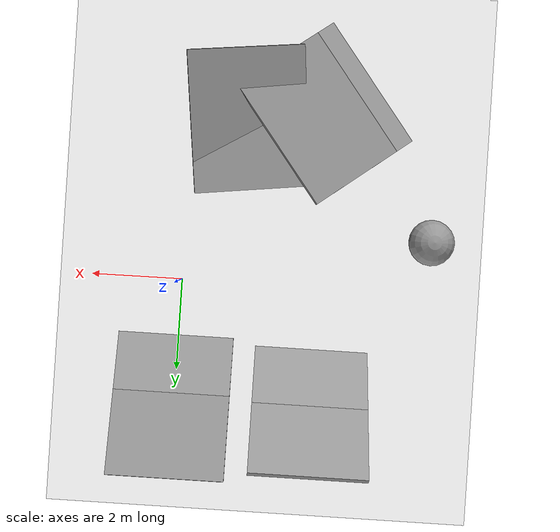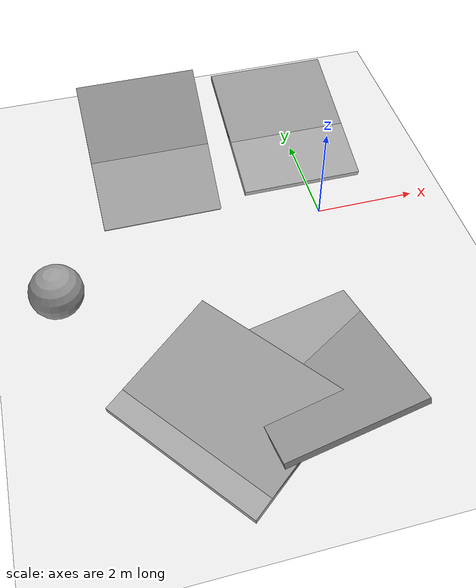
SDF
<sdf version="1.6">
 <world name="default">
  <light name="sun" type="directional">
   <pose>0 0 10 0 -0 0</pose>
   <diffuse>0.8 0.8 0.8 1</diffuse>
   <specular>0.2 0.2 0.2 1</specular>
   <attenuation>
    <range>1000</range>
    <constant>0.9</constant>
    <linear>0.01</linear>
    <quadratic>0.001</quadratic>
   </attenuation>
   <direction>-0.5 0.1 -0.9</direction>
  </light>
  <model name="ground_plane">
   <static>1</static>
   <link name="link">
    <collision name="collision">
     <geometry><plane><normal>0 0 1</normal><size>100 100</size></plane></geometry>
     <surface>
      <contact><collide_bitmask>65535</collide_bitmask></contact>
      <friction><ode><mu>100</mu><mu2>50</mu2></ode></friction>
     </surface>
    </collision>
    <visual name="visual">
     <cast_shadows>0</cast_shadows>
     <geometry><plane><normal>0 0 1</normal><size>100 100</size></plane></geometry>
     <material>
      <script><uri>file://media/materials/scripts/gazebo.material</uri><name>Gazebo/Grey</name></script>
     </material>
    </visual>
   </link>
  </model>
  <gravity>0 0 -9.8</gravity>
  <magnetic_field>6e-06 2.3e-05 -4.2e-05</magnetic_field>
  <atmosphere type="adiabatic"/>
  <physics name="default_physics" default="0" type="ode">
   <max_step_size>0.001</max_step_size>
   <real_time_factor>1</real_time_factor>
   <real_time_update_rate>1000</real_time_update_rate>
  </physics>
  <scene><ambient>0.4 0.4 0.4 1</ambient><background>0.7 0.7 0.7 1</background><shadows>1</shadows></scene>
  <audio><device>default</device></audio>
  <spherical_coordinates>
   <surface_model>EARTH_WGS84</surface_model>
   <latitude_deg>0</latitude_deg>
   <longitude_deg>0</longitude_deg>
   <elevation>0</elevation>
   <heading_deg>0</heading_deg>
  </spherical_coordinates>
  <model name="ramp_static">
   <link name="link">
    <inertial>
     <mass>1</mass>
     <inertia>
      <ixx>0.166667</ixx>
      <ixy>0</ixy>
      <ixz>0</ixz>
      <iyy>0.166667</iyy>
      <iyz>0</iyz>
      <izz>0.166667</izz>
     </inertia>
    </inertial>
    <visual name="visual">
     <geometry><box><size>2.59037 3.16832 0.131346</size></box></geometry>
     <material>
      <script><name>Gazebo/Grey</name><uri>file://media/materials/scripts/gazebo.material</uri></script>
     </material>
    </visual>
    <collision name="collision">
     <geometry><box><size>2.59037 3.16832 0.131346</size></box></geometry>
     <surface>
      <friction>
       <ode><mu>1</mu><mu2>1</mu2><fdir1>0 0 0</fdir1><slip1>0</slip1><slip2>0</slip2></ode>
       <torsional>
        <coefficient>1</coefficient>
        <patch_radius>0</patch_radius>
        <surface_radius>0</surface_radius>
        <use_patch_radius>1</use_patch_radius>
        <ode><slip>0</slip></ode>
       </torsional>
      </friction>
      <bounce><restitution_coefficient>0</restitution_coefficient><threshold>1e+06</threshold></bounce>
      <contact>
       <collide_without_contact>0</collide_without_contact>
       <collide_without_contact_bitmask>1</collide_without_contact_bitmask>
       <collide_bitmask>1</collide_bitmask>
       <ode>
        <soft_cfm>0</soft_cfm>
        <soft_erp>0.2</soft_erp>
        <kp>1e+13</kp>
        <kd>1</kd>
        <max_vel>0.01</max_vel>
        <min_depth>0</min_depth>
       </ode>
       <bullet>
        <split_impulse>1</split_impulse>
        <split_impulse_penetration_threshold>-0.01</split_impulse_penetration_threshold>
        <soft_cfm>0</soft_cfm>
        <soft_erp>0.2</soft_erp>
        <kp>1e+13</kp>
        <kd>1</kd>
       </bullet>
      </contact>
     </surface>
    </collision>
   </link>
   <static>1</static>
   <pose>0.087244 2.81278 0 0.278847 -0 0</pose>
  </model>
  <model name="ramp_static_0">
   <link name="link">
    <inertial>
     <mass>1</mass>
     <inertia>
      <ixx>0.166667</ixx>
      <ixy>0</ixy>
      <ixz>0</ixz>
      <iyy>0.166667</iyy>
      <iyz>0</iyz>
      <izz>0.166667</izz>
     </inertia>
    </inertial>
    <visual name="visual">
     <geometry><box><size>2.59037 3.16832 0.131346</size></box></geometry>
     <material>
      <script><name>Gazebo/Grey</name><uri>file://media/materials/scripts/gazebo.material</uri></script>
     </material>
    </visual>
    <collision name="collision">
     <geometry><box><size>2.59037 3.16832 0.131346</size></box></geometry>
     <surface>
      <friction>
       <ode><mu>1</mu><mu2>1</mu2><fdir1>0 0 0</fdir1><slip1>0</slip1><slip2>0</slip2></ode>
       <torsional>
        <coefficient>1</coefficient>
        <patch_radius>0</patch_radius>
        <surface_radius>0</surface_radius>
        <use_patch_radius>1</use_patch_radius>
        <ode><slip>0</slip></ode>
       </torsional>
      </friction>
      <bounce><restitution_coefficient>0</restitution_coefficient><threshold>1e+06</threshold></bounce>
      <contact>
       <collide_without_contact>0</collide_without_contact>
       <collide_without_contact_bitmask>1</collide_without_contact_bitmask>
       <collide_bitmask>1</collide_bitmask>
       <ode>
        <soft_cfm>0</soft_cfm>
        <soft_erp>0.2</soft_erp>
        <kp>1e+13</kp>
        <kd>1</kd>
        <max_vel>0.01</max_vel>
        <min_depth>0</min_depth>
       </ode>
       <bullet>
        <split_impulse>1</split_impulse>
        <split_impulse_penetration_threshold>-0.01</split_impulse_penetration_threshold>
        <soft_cfm>0</soft_cfm>
        <soft_erp>0.2</soft_erp>
        <kp>1e+13</kp>
        <kd>1</kd>
       </bullet>
      </contact>
     </surface>
    </collision>
   </link>
   <static>1</static>
   <pose>-3.00534 2.75436 0 0.661681 -0 0</pose>
  </model>
  <model name="ramp_static_1">
   <link name="link">
    <inertial>
     <mass>1</mass>
     <inertia>
      <ixx>0.166667</ixx>
      <ixy>0</ixy>
      <ixz>0</ixz>
      <iyy>0.166667</iyy>
      <iyz>0</iyz>
      <izz>0.166667</izz>
     </inertia>
    </inertial>
    <visual name="visual">
     <geometry><box><size>2.59037 3.16832 0.131346</size></box></geometry>
     <material>
      <script><name>Gazebo/Grey</name><uri>file://media/materials/scripts/gazebo.material</uri></script>
     </material>
    </visual>
    <collision name="collision">
     <geometry><box><size>2.59037 3.16832 0.131346</size></box></geometry>
     <surface>
      <friction>
       <ode><mu>1</mu><mu2>1</mu2><fdir1>0 0 0</fdir1><slip1>0</slip1><slip2>0</slip2></ode>
       <torsional>
        <coefficient>1</coefficient>
        <patch_radius>0</patch_radius>
        <surface_radius>0</surface_radius>
        <use_patch_radius>1</use_patch_radius>
        <ode><slip>0</slip></ode>
       </torsional>
      </friction>
      <bounce><restitution_coefficient>0</restitution_coefficient><threshold>1e+06</threshold></bounce>
      <contact>
       <collide_without_contact>0</collide_without_contact>
       <collide_without_contact_bitmask>1</collide_without_contact_bitmask>
       <collide_bitmask>1</collide_bitmask>
       <ode>
        <soft_cfm>0</soft_cfm>
        <soft_erp>0.2</soft_erp>
        <kp>1e+13</kp>
        <kd>1</kd>
        <max_vel>0.01</max_vel>
        <min_depth>0</min_depth>
       </ode>
       <bullet>
        <split_impulse>1</split_impulse>
        <split_impulse_penetration_threshold>-0.01</split_impulse_penetration_threshold>
        <soft_cfm>0</soft_cfm>
        <soft_erp>0.2</soft_erp>
        <kp>1e+13</kp>
        <kd>1</kd>
       </bullet>
      </contact>
     </surface>
    </collision>
   </link>
   <static>1</static>
   <pose>-1.24759 -3.63478 0 -0.270272 -0.121593 0.134496</pose>
  </model>
  <model name="ramp_static_2">
   <link name="link">
    <inertial>
     <mass>1</mass>
     <inertia>
      <ixx>0.166667</ixx>
      <ixy>0</ixy>
      <ixz>0</ixz>
      <iyy>0.166667</iyy>
      <iyz>0</iyz>
      <izz>0.166667</izz>
     </inertia>
    </inertial>
    <visual name="visual">
     <geometry><box><size>2.59037 3.16832 0.131346</size></box></geometry>
     <material>
      <script><name>Gazebo/Grey</name><uri>file://media/materials/scripts/gazebo.material</uri></script>
     </material>
    </visual>
    <collision name="collision">
     <geometry><box><size>2.59037 3.16832 0.131346</size></box></geometry>
     <surface>
      <friction>
       <ode><mu>1</mu><mu2>1</mu2><fdir1>0 0 0</fdir1><slip1>0</slip1><slip2>0</slip2></ode>
       <torsional>
        <coefficient>1</coefficient>
        <patch_radius>0</patch_radius>
        <surface_radius>0</surface_radius>
        <use_patch_radius>1</use_patch_radius>
        <ode><slip>0</slip></ode>
       </torsional>
      </friction>
      <bounce><restitution_coefficient>0</restitution_coefficient><threshold>1e+06</threshold></bounce>
      <contact>
       <collide_without_contact>0</collide_without_contact>
       <collide_without_contact_bitmask>1</collide_without_contact_bitmask>
       <collide_bitmask>1</collide_bitmask>
       <ode>
        <soft_cfm>0</soft_cfm>
        <soft_erp>0.2</soft_erp>
        <kp>1e+13</kp>
        <kd>1</kd>
        <max_vel>0.01</max_vel>
        <min_depth>0</min_depth>
       </ode>
       <bullet>
        <split_impulse>1</split_impulse>
        <split_impulse_penetration_threshold>-0.01</split_impulse_penetration_threshold>
        <soft_cfm>0</soft_cfm>
        <soft_erp>0.2</soft_erp>
        <kp>1e+13</kp>
        <kd>1</kd>
       </bullet>
      </contact>
     </surface>
    </collision>
   </link>
   <static>1</static>
   <pose>-2.91778 -3.86742 0.03512 0 -0.13003 0.650342</pose>
  </model>
  <model name="unit_sphere">
   <pose>-5.38118 -1.14694 0.5 0 -0 0</pose>
   <link name="link">
    <inertial>
     <mass>1</mass>
     <inertia><ixx>0.1</ixx><ixy>0</ixy><ixz>0</ixz><iyy>0.1</iyy><iyz>0</iyz><izz>0.1</izz></inertia>
    </inertial>
    <collision name="collision"><geometry><sphere><radius>0.5</radius></sphere></geometry></collision>
    <visual name="visual">
     <geometry><sphere><radius>0.5</radius></sphere></geometry>
     <material>
      <script><name>Gazebo/Grey</name><uri>file://media/materials/scripts/gazebo.material</uri></script>
     </material>
    </visual>
   </link>
  </model>
 </world>
</sdf>
